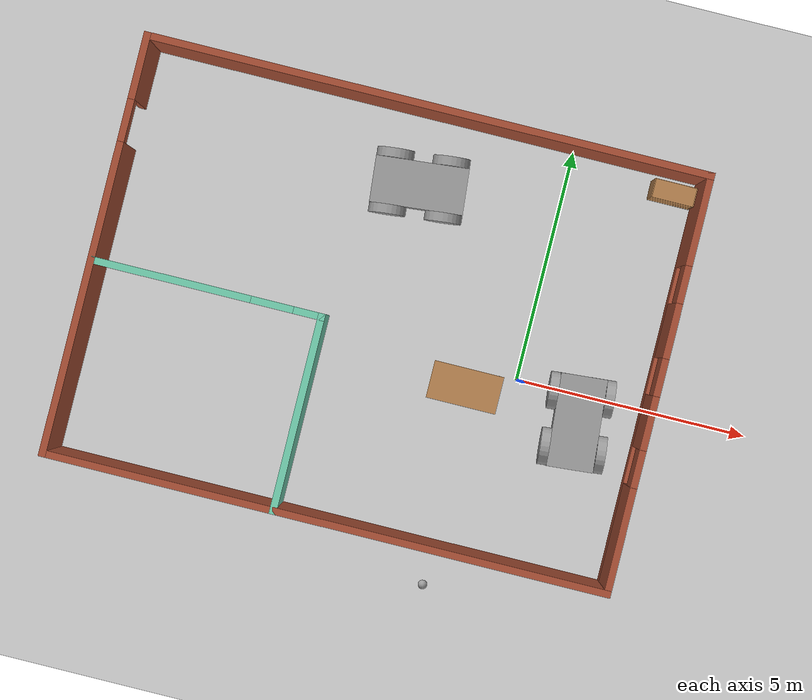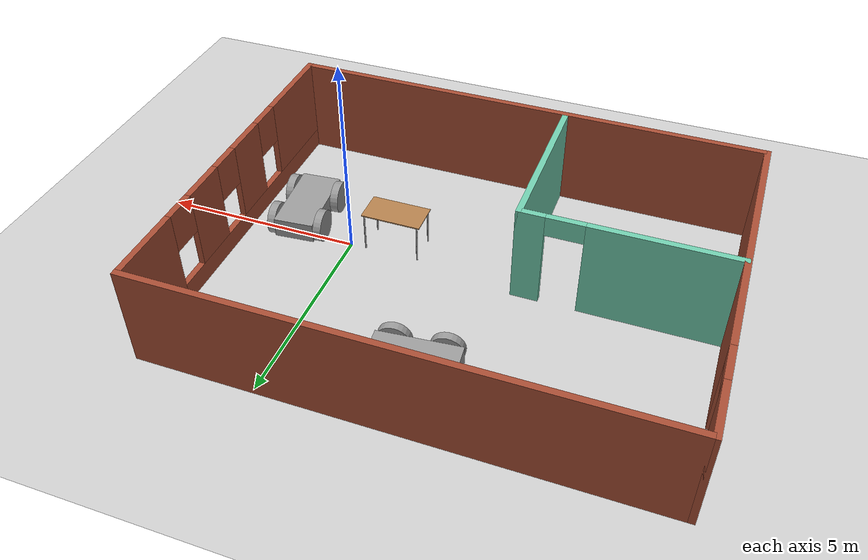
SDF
<sdf version="1.6">
 <world name="default">
  <plugin name="welcome" filename="libwelcome.so"/>
  <light name="sun" type="directional">
   <pose>0 0 10 0 -0 0</pose>
   <diffuse>0.8 0.8 0.8 1</diffuse>
   <specular>0.1 0.1 0.1 1</specular>
   <attenuation>
    <range>1000</range>
    <constant>0.9</constant>
    <linear>0.01</linear>
    <quadratic>0.001</quadratic>
   </attenuation>
   <direction>-0.5 0.5 -1</direction>
  </light>
  <model name="ground_plane">
   <static>1</static>
   <link name="link">
    <collision name="collision">
     <geometry><plane><normal>0 0 1</normal><size>100 100</size></plane></geometry>
     <surface><friction><ode><mu>100</mu><mu2>50</mu2></ode></friction></surface>
    </collision>
    <visual name="visual">
     <cast_shadows>0</cast_shadows>
     <geometry><plane><normal>0 0 1</normal><size>100 100</size></plane></geometry>
     <material>
      <script><uri>file://media/materials/scripts/gazebo.material</uri><name>Gazebo/Grey</name></script>
     </material>
    </visual>
   </link>
  </model>
  <gravity>0 0 -9.8</gravity>
  <magnetic_field>6e-06 2.3e-05 -4.2e-05</magnetic_field>
  <atmosphere type="adiabatic"/>
  <physics name="default_physics" default="0" type="ode">
   <max_step_size>0.001</max_step_size>
   <real_time_factor>1</real_time_factor>
   <real_time_update_rate>1000</real_time_update_rate>
  </physics>
  <scene><ambient>0.4 0.4 0.4 1</ambient><background>0.7 0.7 0.7 1</background><shadows>1</shadows></scene>
  <spherical_coordinates>
   <surface_model>EARTH_WGS84</surface_model>
   <latitude_deg>0</latitude_deg>
   <longitude_deg>0</longitude_deg>
   <elevation>0</elevation>
   <heading_deg>0</heading_deg>
  </spherical_coordinates>
  <model name="fourwalledbuilding">
   <pose>-3.19849 0.619298 0 0 -0 0</pose>
   <link name="Wall_10">
    <pose>-5.975 0.00084 0 0 -0 1.5708</pose>
    <visual name="Wall_10_Visual_0">
     <pose>-1.16203 0 1.25 0 -0 0</pose>
     <geometry><box><size>6.67594 0.15 2.5</size></box></geometry>
     <material>
      <script><uri>file://media/materials/scripts/gazebo.material</uri><name>Gazebo/Bricks</name></script>
      <ambient>0.921569 0.807843 0.615686 1</ambient>
     </material>
     <meta><layer>0</layer></meta>
    </visual>
    <collision name="Wall_10_Collision_0">
     <geometry><box><size>6.67594 0.15 2.5</size></box></geometry>
     <pose>-1.16203 0 1.25 0 -0 0</pose>
    </collision>
    <visual name="Wall_10_Visual_1">
     <pose>3.78797 0 1.25 0 -0 0</pose>
     <geometry><box><size>1.42406 0.15 2.5</size></box></geometry>
     <material>
      <script><uri>file://media/materials/scripts/gazebo.material</uri><name>Gazebo/Bricks</name></script>
      <ambient>0.921569 0.807843 0.615686 1</ambient>
     </material>
     <meta><layer>0</layer></meta>
    </visual>
    <collision name="Wall_10_Collision_1">
     <geometry><box><size>1.42406 0.15 2.5</size></box></geometry>
     <pose>3.78797 0 1.25 0 -0 0</pose>
    </collision>
    <visual name="Wall_10_Visual_2">
     <pose>2.62594 0 2.25 0 -0 0</pose>
     <geometry><box><size>0.9 0.15 0.5</size></box></geometry>
     <material>
      <script><uri>file://media/materials/scripts/gazebo.material</uri><name>Gazebo/Bricks</name></script>
      <ambient>0.921569 0.807843 0.615686 1</ambient>
     </material>
     <meta><layer>0</layer></meta>
    </visual>
    <collision name="Wall_10_Collision_2">
     <geometry><box><size>0.9 0.15 0.5</size></box></geometry>
     <pose>2.62594 0 2.25 0 -0 0</pose>
    </collision>
   </link>
   <link name="Wall_12">
    <pose>-3.51992 -0.32584 0 0 -0 0</pose>
    <visual name="Wall_12_Visual_0">
     <pose>-0.785586 0 1.25 0 -0 0</pose>
     <geometry><box><size>3.42883 0.15 2.5</size></box></geometry>
     <material>
      <script><uri>file://media/materials/scripts/gazebo.material</uri><name>Gazebo/Grey</name></script>
      <ambient>0.435294 0.796078 0.67451 1</ambient>
     </material>
     <meta><layer>0</layer></meta>
    </visual>
    <collision name="Wall_12_Collision_0">
     <geometry><box><size>3.42883 0.15 2.5</size></box></geometry>
     <pose>-0.785586 0 1.25 0 -0 0</pose>
    </collision>
    <visual name="Wall_12_Visual_1">
     <pose>2.16441 0 1.25 0 -0 0</pose>
     <geometry><box><size>0.671172 0.15 2.5</size></box></geometry>
     <material>
      <script><uri>file://media/materials/scripts/gazebo.material</uri><name>Gazebo/Grey</name></script>
      <ambient>0.435294 0.796078 0.67451 1</ambient>
     </material>
     <meta><layer>0</layer></meta>
    </visual>
    <collision name="Wall_12_Collision_1">
     <geometry><box><size>0.671172 0.15 2.5</size></box></geometry>
     <pose>2.16441 0 1.25 0 -0 0</pose>
    </collision>
    <visual name="Wall_12_Visual_2">
     <pose>1.37883 0 2.25 0 -0 0</pose>
     <geometry><box><size>0.9 0.15 0.5</size></box></geometry>
     <material>
      <script><uri>file://media/materials/scripts/gazebo.material</uri><name>Gazebo/Grey</name></script>
      <ambient>0.435294 0.796078 0.67451 1</ambient>
     </material>
     <meta><layer>0</layer></meta>
    </visual>
    <collision name="Wall_12_Collision_2">
     <geometry><box><size>0.9 0.15 0.5</size></box></geometry>
     <pose>1.37883 0 2.25 0 -0 0</pose>
    </collision>
   </link>
   <link name="Wall_13">
    <collision name="Wall_13_Collision">
     <geometry><box><size>4.25 0.15 2.5</size></box></geometry>
     <pose>0 0 1.25 0 -0 0</pose>
    </collision>
    <visual name="Wall_13_Visual">
     <pose>0 0 1.25 0 -0 0</pose>
     <geometry><box><size>4.25 0.15 2.5</size></box></geometry>
     <material>
      <script><uri>file://media/materials/scripts/gazebo.material</uri><name>Gazebo/Grey</name></script>
      <ambient>0.435294 0.796078 0.67451 1</ambient>
     </material>
     <meta><layer>0</layer></meta>
    </visual>
    <pose>-1.09492 -2.37584 0 0 0 -1.5708</pose>
   </link>
   <link name="Wall_6">
    <collision name="Wall_6_Collision">
     <geometry><box><size>12 0.15 2.5</size></box></geometry>
     <pose>0 0 1.25 0 -0 0</pose>
    </collision>
    <visual name="Wall_6_Visual">
     <pose>0 0 1.25 0 -0 0</pose>
     <geometry><box><size>12 0.15 2.5</size></box></geometry>
     <material>
      <script><uri>file://media/materials/scripts/gazebo.material</uri><name>Gazebo/Bricks</name></script>
      <ambient>0.921569 0.807843 0.615686 1</ambient>
     </material>
     <meta><layer>0</layer></meta>
    </visual>
    <pose>0.05 4.42584 0 0 -0 0</pose>
   </link>
   <link name="Wall_7">
    <pose>5.975 0.00084 0 0 0 -1.5708</pose>
    <visual name="Wall_7_Visual_0">
     <pose>-3.51027 0 1.25 0 -0 0</pose>
     <geometry><box><size>1.97946 0.15 2.5</size></box></geometry>
     <material>
      <script><uri>file://media/materials/scripts/gazebo.material</uri><name>Gazebo/Bricks</name></script>
      <ambient>0.921569 0.807843 0.615686 1</ambient>
     </material>
     <meta><layer>0</layer></meta>
    </visual>
    <collision name="Wall_7_Collision_0">
     <geometry><box><size>1.97946 0.15 2.5</size></box></geometry>
     <pose>-3.51027 0 1.25 0 -0 0</pose>
    </collision>
    <visual name="Wall_7_Visual_1">
     <pose>0.989731 0 0.25 0 -0 0</pose>
     <geometry><box><size>7.02054 0.15 0.5</size></box></geometry>
     <material>
      <script><uri>file://media/materials/scripts/gazebo.material</uri><name>Gazebo/Bricks</name></script>
      <ambient>0.921569 0.807843 0.615686 1</ambient>
     </material>
     <meta><layer>0</layer></meta>
    </visual>
    <collision name="Wall_7_Collision_1">
     <geometry><box><size>7.02054 0.15 0.5</size></box></geometry>
     <pose>0.989731 0 0.25 0 -0 0</pose>
    </collision>
    <visual name="Wall_7_Visual_2">
     <pose>-1.13633 0 1.5 0 -0 0</pose>
     <geometry><box><size>1.16841 0.15 2</size></box></geometry>
     <material>
      <script><uri>file://media/materials/scripts/gazebo.material</uri><name>Gazebo/Bricks</name></script>
      <ambient>0.921569 0.807843 0.615686 1</ambient>
     </material>
     <meta><layer>0</layer></meta>
    </visual>
    <collision name="Wall_7_Collision_2">
     <geometry><box><size>1.16841 0.15 2</size></box></geometry>
     <pose>-1.13633 0 1.5 0 -0 0</pose>
    </collision>
    <visual name="Wall_7_Visual_3">
     <pose>0.818784 0 1.5 0 -0 0</pose>
     <geometry><box><size>1.14182 0.15 2</size></box></geometry>
     <material>
      <script><uri>file://media/materials/scripts/gazebo.material</uri><name>Gazebo/Bricks</name></script>
      <ambient>0.921569 0.807843 0.615686 1</ambient>
     </material>
     <meta><layer>0</layer></meta>
    </visual>
    <collision name="Wall_7_Collision_3">
     <geometry><box><size>1.14182 0.15 2</size></box></geometry>
     <pose>0.818784 0 1.5 0 -0 0</pose>
    </collision>
    <visual name="Wall_7_Visual_4">
     <pose>3.34485 0 1.5 0 -0 0</pose>
     <geometry><box><size>2.31031 0.15 2</size></box></geometry>
     <material>
      <script><uri>file://media/materials/scripts/gazebo.material</uri><name>Gazebo/Bricks</name></script>
      <ambient>0.921569 0.807843 0.615686 1</ambient>
     </material>
     <meta><layer>0</layer></meta>
    </visual>
    <collision name="Wall_7_Collision_4">
     <geometry><box><size>2.31031 0.15 2</size></box></geometry>
     <pose>3.34485 0 1.5 0 -0 0</pose>
    </collision>
    <visual name="Wall_7_Visual_5">
     <pose>-2.12054 0 2 0 -0 0</pose>
     <geometry><box><size>0.8 0.15 1</size></box></geometry>
     <material>
      <script><uri>file://media/materials/scripts/gazebo.material</uri><name>Gazebo/Bricks</name></script>
      <ambient>0.921569 0.807843 0.615686 1</ambient>
     </material>
     <meta><layer>0</layer></meta>
    </visual>
    <collision name="Wall_7_Collision_5">
     <geometry><box><size>0.8 0.15 1</size></box></geometry>
     <pose>-2.12054 0 2 0 -0 0</pose>
    </collision>
    <visual name="Wall_7_Visual_6">
     <pose>-0.152123 0 2 0 -0 0</pose>
     <geometry><box><size>0.8 0.15 1</size></box></geometry>
     <material>
      <script><uri>file://media/materials/scripts/gazebo.material</uri><name>Gazebo/Bricks</name></script>
      <ambient>0.921569 0.807843 0.615686 1</ambient>
     </material>
     <meta><layer>0</layer></meta>
    </visual>
    <collision name="Wall_7_Collision_6">
     <geometry><box><size>0.8 0.15 1</size></box></geometry>
     <pose>-0.152123 0 2 0 -0 0</pose>
    </collision>
    <visual name="Wall_7_Visual_7">
     <pose>1.78969 0 2 0 -0 0</pose>
     <geometry><box><size>0.8 0.15 1</size></box></geometry>
     <material>
      <script><uri>file://media/materials/scripts/gazebo.material</uri><name>Gazebo/Bricks</name></script>
      <ambient>0.921569 0.807843 0.615686 1</ambient>
     </material>
     <meta><layer>0</layer></meta>
    </visual>
    <collision name="Wall_7_Collision_7">
     <geometry><box><size>0.8 0.15 1</size></box></geometry>
     <pose>1.78969 0 2 0 -0 0</pose>
    </collision>
   </link>
   <link name="Wall_8">
    <collision name="Wall_8_Collision">
     <geometry><box><size>12 0.15 2.5</size></box></geometry>
     <pose>0 0 1.25 0 -0 0</pose>
    </collision>
    <visual name="Wall_8_Visual">
     <pose>0 0 1.25 0 -0 0</pose>
     <geometry><box><size>12 0.15 2.5</size></box></geometry>
     <material>
      <script><uri>file://media/materials/scripts/gazebo.material</uri><name>Gazebo/Bricks</name></script>
      <ambient>0.921569 0.807843 0.615686 1</ambient>
     </material>
     <meta><layer>0</layer></meta>
    </visual>
    <pose>0.05 -4.42416 0 0 -0 3.14159</pose>
   </link>
   <static>1</static>
  </model>
  <model name="fourwheeled">
   <link name="chasis">
    <pose>-0.029032 1.14923 0.369998 0 -0 0</pose>
    <inertial>
     <mass>1</mass>
     <inertia>
      <ixx>0.166667</ixx>
      <ixy>0</ixy>
      <ixz>0</ixz>
      <iyy>0.166667</iyy>
      <iyz>0</iyz>
      <izz>0.166667</izz>
     </inertia>
    </inertial>
    <visual name="visual">
     <geometry><box><size>2 1 0.5</size></box></geometry>
     <material>
      <lighting>1</lighting>
      <script><uri>file://media/materials/scripts/gazebo.material</uri><name>Gazebo/Grey</name></script>
      <shader type="pixel"><normal_map>__default__</normal_map></shader>
      <ambient>0.3 0.3 0.3 1</ambient>
      <diffuse>0.7 0.7 0.7 1</diffuse>
      <specular>0.01 0.01 0.01 1</specular>
      <emissive>0 0 0 1</emissive>
     </material>
    </visual>
    <collision name="collision">
     <geometry><box><size>2 1 0.5</size></box></geometry>
     <surface>
      <friction>
       <ode><mu>1</mu><mu2>1</mu2><fdir1>0 0 0</fdir1><slip1>0</slip1><slip2>0</slip2></ode>
       <torsional>
        <coefficient>1</coefficient>
        <patch_radius>0</patch_radius>
        <surface_radius>0</surface_radius>
        <use_patch_radius>1</use_patch_radius>
        <ode><slip>0</slip></ode>
       </torsional>
      </friction>
      <bounce><restitution_coefficient>0</restitution_coefficient><threshold>1e+06</threshold></bounce>
      <contact>
       <collide_without_contact>0</collide_without_contact>
       <collide_without_contact_bitmask>1</collide_without_contact_bitmask>
       <collide_bitmask>1</collide_bitmask>
       <ode>
        <soft_cfm>0</soft_cfm>
        <soft_erp>0.2</soft_erp>
        <kp>1e+13</kp>
        <kd>1</kd>
        <max_vel>0.01</max_vel>
        <min_depth>0</min_depth>
       </ode>
       <bullet>
        <split_impulse>1</split_impulse>
        <split_impulse_penetration_threshold>-0.01</split_impulse_penetration_threshold>
        <soft_cfm>0</soft_cfm>
        <soft_erp>0.2</soft_erp>
        <kp>1e+13</kp>
        <kd>1</kd>
       </bullet>
      </contact>
     </surface>
    </collision>
   </link>
   <link name="leftbackwheel">
    <pose>0.570968 0.549188 0.369996 1.5707 -0 0</pose>
    <inertial>
     <mass>1</mass>
     <inertia><ixx>0.145833</ixx><ixy>0</ixy><ixz>0</ixz><iyy>0.145833</iyy><iyz>0</iyz><izz>0.125</izz></inertia>
    </inertial>
    <visual name="visual">
     <geometry><cylinder><radius>0.4</radius><length>0.2</length></cylinder></geometry>
     <material>
      <lighting>1</lighting>
      <script><uri>file://media/materials/scripts/gazebo.material</uri><name>Gazebo/Grey</name></script>
      <shader type="pixel"><normal_map>__default__</normal_map></shader>
      <ambient>0.3 0.3 0.3 1</ambient>
      <diffuse>0.7 0.7 0.7 1</diffuse>
      <specular>0.01 0.01 0.01 1</specular>
      <emissive>0 0 0 1</emissive>
     </material>
    </visual>
    <collision name="collision">
     <geometry><cylinder><radius>0.4</radius><length>0.2</length></cylinder></geometry>
     <surface>
      <friction>
       <ode><mu>1</mu><mu2>1</mu2><fdir1>0 0 0</fdir1><slip1>0</slip1><slip2>0</slip2></ode>
       <torsional>
        <coefficient>1</coefficient>
        <patch_radius>0</patch_radius>
        <surface_radius>0</surface_radius>
        <use_patch_radius>1</use_patch_radius>
        <ode><slip>0</slip></ode>
       </torsional>
      </friction>
      <bounce><restitution_coefficient>0</restitution_coefficient><threshold>1e+06</threshold></bounce>
      <contact>
       <collide_without_contact>0</collide_without_contact>
       <collide_without_contact_bitmask>1</collide_without_contact_bitmask>
       <collide_bitmask>1</collide_bitmask>
       <ode>
        <soft_cfm>0</soft_cfm>
        <soft_erp>0.2</soft_erp>
        <kp>1e+13</kp>
        <kd>1</kd>
        <max_vel>0.01</max_vel>
        <min_depth>0</min_depth>
       </ode>
       <bullet>
        <split_impulse>1</split_impulse>
        <split_impulse_penetration_threshold>-0.01</split_impulse_penetration_threshold>
        <soft_cfm>0</soft_cfm>
        <soft_erp>0.2</soft_erp>
        <kp>1e+13</kp>
        <kd>1</kd>
       </bullet>
      </contact>
     </surface>
    </collision>
   </link>
   <link name="rightfrontwheel">
    <pose>-0.629032 1.74919 0.369998 1.5707 -0 0</pose>
    <inertial>
     <mass>1</mass>
     <inertia><ixx>0.145833</ixx><ixy>0</ixy><ixz>0</ixz><iyy>0.145833</iyy><iyz>0</iyz><izz>0.125</izz></inertia>
    </inertial>
    <visual name="visual">
     <geometry><cylinder><radius>0.4</radius><length>0.2</length></cylinder></geometry>
     <material>
      <lighting>1</lighting>
      <script><uri>file://media/materials/scripts/gazebo.material</uri><name>Gazebo/Grey</name></script>
      <shader type="pixel"><normal_map>__default__</normal_map></shader>
      <ambient>0.3 0.3 0.3 1</ambient>
      <diffuse>0.7 0.7 0.7 1</diffuse>
      <specular>0.01 0.01 0.01 1</specular>
      <emissive>0 0 0 1</emissive>
     </material>
    </visual>
    <collision name="collision">
     <geometry><cylinder><radius>0.4</radius><length>0.2</length></cylinder></geometry>
     <surface>
      <friction>
       <ode><mu>1</mu><mu2>1</mu2><fdir1>0 0 0</fdir1><slip1>0</slip1><slip2>0</slip2></ode>
       <torsional>
        <coefficient>1</coefficient>
        <patch_radius>0</patch_radius>
        <surface_radius>0</surface_radius>
        <use_patch_radius>1</use_patch_radius>
        <ode><slip>0</slip></ode>
       </torsional>
      </friction>
      <bounce><restitution_coefficient>0</restitution_coefficient><threshold>1e+06</threshold></bounce>
      <contact>
       <collide_without_contact>0</collide_without_contact>
       <collide_without_contact_bitmask>1</collide_without_contact_bitmask>
       <collide_bitmask>1</collide_bitmask>
       <ode>
        <soft_cfm>0</soft_cfm>
        <soft_erp>0.2</soft_erp>
        <kp>1e+13</kp>
        <kd>1</kd>
        <max_vel>0.01</max_vel>
        <min_depth>0</min_depth>
       </ode>
       <bullet>
        <split_impulse>1</split_impulse>
        <split_impulse_penetration_threshold>-0.01</split_impulse_penetration_threshold>
        <soft_cfm>0</soft_cfm>
        <soft_erp>0.2</soft_erp>
        <kp>1e+13</kp>
        <kd>1</kd>
       </bullet>
      </contact>
     </surface>
    </collision>
   </link>
   <link name="leftfrontwheel">
    <pose>-0.629032 0.549188 0.369998 1.5707 -0 0</pose>
    <inertial>
     <mass>1</mass>
     <inertia><ixx>0.145833</ixx><ixy>0</ixy><ixz>0</ixz><iyy>0.145833</iyy><iyz>0</iyz><izz>0.125</izz></inertia>
    </inertial>
    <visual name="visual">
     <geometry><cylinder><radius>0.4</radius><length>0.2</length></cylinder></geometry>
     <material>
      <lighting>1</lighting>
      <script><uri>file://media/materials/scripts/gazebo.material</uri><name>Gazebo/Grey</name></script>
      <shader type="pixel"><normal_map>__default__</normal_map></shader>
      <ambient>0.3 0.3 0.3 1</ambient>
      <diffuse>0.7 0.7 0.7 1</diffuse>
      <specular>0.01 0.01 0.01 1</specular>
      <emissive>0 0 0 1</emissive>
     </material>
    </visual>
    <collision name="collision">
     <geometry><cylinder><radius>0.4</radius><length>0.2</length></cylinder></geometry>
     <surface>
      <friction>
       <ode><mu>1</mu><mu2>1</mu2><fdir1>0 0 0</fdir1><slip1>0</slip1><slip2>0</slip2></ode>
       <torsional>
        <coefficient>1</coefficient>
        <patch_radius>0</patch_radius>
        <surface_radius>0</surface_radius>
        <use_patch_radius>1</use_patch_radius>
        <ode><slip>0</slip></ode>
       </torsional>
      </friction>
      <bounce><restitution_coefficient>0</restitution_coefficient><threshold>1e+06</threshold></bounce>
      <contact>
       <collide_without_contact>0</collide_without_contact>
       <collide_without_contact_bitmask>1</collide_without_contact_bitmask>
       <collide_bitmask>1</collide_bitmask>
       <ode>
        <soft_cfm>0</soft_cfm>
        <soft_erp>0.2</soft_erp>
        <kp>1e+13</kp>
        <kd>1</kd>
        <max_vel>0.01</max_vel>
        <min_depth>0</min_depth>
       </ode>
       <bullet>
        <split_impulse>1</split_impulse>
        <split_impulse_penetration_threshold>-0.01</split_impulse_penetration_threshold>
        <soft_cfm>0</soft_cfm>
        <soft_erp>0.2</soft_erp>
        <kp>1e+13</kp>
        <kd>1</kd>
       </bullet>
      </contact>
     </surface>
    </collision>
   </link>
   <link name="rigthbackwheel">
    <pose>0.570968 1.74919 0.369998 1.5707 -0 0</pose>
    <inertial>
     <mass>1</mass>
     <inertia><ixx>0.145833</ixx><ixy>0</ixy><ixz>0</ixz><iyy>0.145833</iyy><iyz>0</iyz><izz>0.125</izz></inertia>
    </inertial>
    <visual name="visual">
     <geometry><cylinder><radius>0.4</radius><length>0.2</length></cylinder></geometry>
     <material>
      <lighting>1</lighting>
      <script><uri>file://media/materials/scripts/gazebo.material</uri><name>Gazebo/Grey</name></script>
      <shader type="pixel"><normal_map>__default__</normal_map></shader>
      <ambient>0.3 0.3 0.3 1</ambient>
      <diffuse>0.7 0.7 0.7 1</diffuse>
      <specular>0.01 0.01 0.01 1</specular>
      <emissive>0 0 0 1</emissive>
     </material>
    </visual>
    <collision name="collision">
     <geometry><cylinder><radius>0.4</radius><length>0.2</length></cylinder></geometry>
     <surface>
      <friction>
       <ode><mu>1</mu><mu2>1</mu2><fdir1>0 0 0</fdir1><slip1>0</slip1><slip2>0</slip2></ode>
       <torsional>
        <coefficient>1</coefficient>
        <patch_radius>0</patch_radius>
        <surface_radius>0</surface_radius>
        <use_patch_radius>1</use_patch_radius>
        <ode><slip>0</slip></ode>
       </torsional>
      </friction>
      <bounce><restitution_coefficient>0</restitution_coefficient><threshold>1e+06</threshold></bounce>
      <contact>
       <collide_without_contact>0</collide_without_contact>
       <collide_without_contact_bitmask>1</collide_without_contact_bitmask>
       <collide_bitmask>1</collide_bitmask>
       <ode>
        <soft_cfm>0</soft_cfm>
        <soft_erp>0.2</soft_erp>
        <kp>1e+13</kp>
        <kd>1</kd>
        <max_vel>0.01</max_vel>
        <min_depth>0</min_depth>
       </ode>
       <bullet>
        <split_impulse>1</split_impulse>
        <split_impulse_penetration_threshold>-0.01</split_impulse_penetration_threshold>
        <soft_cfm>0</soft_cfm>
        <soft_erp>0.2</soft_erp>
        <kp>1e+13</kp>
        <kd>1</kd>
       </bullet>
      </contact>
     </surface>
    </collision>
   </link>
   <joint name="chasis_JOINT_0" type="revolute">
    <parent>chasis</parent>
    <child>leftfrontwheel</child>
    <axis>
     <xyz>0 0 1</xyz>
     <use_parent_model_frame>0</use_parent_model_frame>
     <limit>
      <lower>-1.79769e+308</lower>
      <upper>1.79769e+308</upper>
      <effort>-1</effort>
      <velocity>-1</velocity>
     </limit>
     <dynamics>
      <spring_reference>0</spring_reference>
      <spring_stiffness>0</spring_stiffness>
      <damping>0</damping>
     </dynamics>
    </axis>
    <physics>
     <ode><limit><cfm>0</cfm><erp>0.2</erp></limit><suspension><cfm>0</cfm><erp>0.2</erp></suspension></ode>
    </physics>
   </joint>
   <joint name="chasis_JOINT_1" type="revolute">
    <parent>chasis</parent>
    <child>leftbackwheel</child>
    <axis>
     <xyz>0 0 1</xyz>
     <use_parent_model_frame>0</use_parent_model_frame>
     <limit>
      <lower>-1.79769e+308</lower>
      <upper>1.79769e+308</upper>
      <effort>-1</effort>
      <velocity>-1</velocity>
     </limit>
     <dynamics>
      <spring_reference>0</spring_reference>
      <spring_stiffness>0</spring_stiffness>
      <damping>0</damping>
     </dynamics>
    </axis>
    <physics>
     <ode><limit><cfm>0</cfm><erp>0.2</erp></limit><suspension><cfm>0</cfm><erp>0.2</erp></suspension></ode>
    </physics>
   </joint>
   <joint name="chasis_JOINT_2" type="revolute">
    <parent>chasis</parent>
    <child>rightfrontwheel</child>
    <axis>
     <xyz>0 0 1</xyz>
     <use_parent_model_frame>0</use_parent_model_frame>
     <limit>
      <lower>-1.79769e+308</lower>
      <upper>1.79769e+308</upper>
      <effort>-1</effort>
      <velocity>-1</velocity>
     </limit>
     <dynamics>
      <spring_reference>0</spring_reference>
      <spring_stiffness>0</spring_stiffness>
      <damping>0</damping>
     </dynamics>
    </axis>
    <physics>
     <ode><limit><cfm>0</cfm><erp>0.2</erp></limit><suspension><cfm>0</cfm><erp>0.2</erp></suspension></ode>
    </physics>
   </joint>
   <joint name="chasis_JOINT_3" type="revolute">
    <parent>chasis</parent>
    <child>rigthbackwheel</child>
    <axis>
     <xyz>0 0 1</xyz>
     <use_parent_model_frame>0</use_parent_model_frame>
     <limit>
      <lower>-1.79769e+308</lower>
      <upper>1.79769e+308</upper>
      <effort>-1</effort>
      <velocity>-1</velocity>
     </limit>
     <dynamics>
      <spring_reference>0</spring_reference>
      <spring_stiffness>0</spring_stiffness>
      <damping>0</damping>
     </dynamics>
    </axis>
    <physics>
     <ode><limit><cfm>0</cfm><erp>0.2</erp></limit><suspension><cfm>0</cfm><erp>0.2</erp></suspension></ode>
    </physics>
   </joint>
   <static>0</static>
   <pose>-2.88803 2.36732 0.030016 -3e-06 -4e-06 0.092601</pose>
  </model>
  <model name="table">
   <static>1</static>
   <link name="link">
    <collision name="surface">
     <pose>0 0 1 0 -0 0</pose>
     <geometry><box><size>1.5 0.8 0.03</size></box></geometry>
     <surface><friction><ode><mu>0.6</mu><mu2>0.6</mu2></ode></friction></surface>
    </collision>
    <visual name="visual1">
     <pose>0 0 1 0 -0 0</pose>
     <geometry><box><size>1.5 0.8 0.03</size></box></geometry>
     <material>
      <script><uri>file://media/materials/scripts/gazebo.material</uri><name>Gazebo/Wood</name></script>
     </material>
    </visual>
    <collision name="front_left_leg">
     <pose>0.68 0.38 0.5 0 -0 0</pose>
     <geometry><cylinder><radius>0.02</radius><length>1</length></cylinder></geometry>
    </collision>
    <visual name="front_left_leg">
     <pose>0.68 0.38 0.5 0 -0 0</pose>
     <geometry><cylinder><radius>0.02</radius><length>1</length></cylinder></geometry>
     <material>
      <script><uri>file://media/materials/scripts/gazebo.material</uri><name>Gazebo/Grey</name></script>
     </material>
    </visual>
    <collision name="front_right_leg">
     <pose>0.68 -0.38 0.5 0 -0 0</pose>
     <geometry><cylinder><radius>0.02</radius><length>1</length></cylinder></geometry>
    </collision>
    <visual name="front_right_leg">
     <pose>0.68 -0.38 0.5 0 -0 0</pose>
     <geometry><cylinder><radius>0.02</radius><length>1</length></cylinder></geometry>
     <material>
      <script><uri>file://media/materials/scripts/gazebo.material</uri><name>Gazebo/Grey</name></script>
     </material>
    </visual>
    <collision name="back_right_leg">
     <pose>-0.68 -0.38 0.5 0 -0 0</pose>
     <geometry><cylinder><radius>0.02</radius><length>1</length></cylinder></geometry>
    </collision>
    <visual name="back_right_leg">
     <pose>-0.68 -0.38 0.5 0 -0 0</pose>
     <geometry><cylinder><radius>0.02</radius><length>1</length></cylinder></geometry>
     <material>
      <script><uri>file://media/materials/scripts/gazebo.material</uri><name>Gazebo/Grey</name></script>
     </material>
    </visual>
    <collision name="back_left_leg">
     <pose>-0.68 0.38 0.5 0 -0 0</pose>
     <geometry><cylinder><radius>0.02</radius><length>1</length></cylinder></geometry>
    </collision>
    <visual name="back_left_leg">
     <pose>-0.68 0.38 0.5 0 -0 0</pose>
     <geometry><cylinder><radius>0.02</radius><length>1</length></cylinder></geometry>
     <material>
      <script><uri>file://media/materials/scripts/gazebo.material</uri><name>Gazebo/Grey</name></script>
     </material>
    </visual>
   </link>
   <pose>-1.05306 -0.410816 0 0 -0 0</pose>
  </model>
  <model name="bookshelf">
   <static>1</static>
   <link name="link">
    <inertial><mass>1</mass></inertial>
    <collision name="back">
     <pose>0 0.005 0.6 0 -0 0</pose>
     <geometry><box><size>0.9 0.01 1.2</size></box></geometry>
    </collision>
    <visual name="visual1">
     <pose>0 0.005 0.6 0 -0 0</pose>
     <geometry><box><size>0.9 0.01 1.2</size></box></geometry>
     <material>
      <script><uri>file://media/materials/scripts/gazebo.material</uri><name>Gazebo/Wood</name></script>
     </material>
    </visual>
    <collision name="left_side">
     <pose>0.45 -0.195 0.6 0 -0 0</pose>
     <geometry><box><size>0.02 0.4 1.2</size></box></geometry>
    </collision>
    <visual name="visual2">
     <pose>0.45 -0.195 0.6 0 -0 0</pose>
     <geometry><box><size>0.02 0.4 1.2</size></box></geometry>
     <material>
      <script><uri>file://media/materials/scripts/gazebo.material</uri><name>Gazebo/Wood</name></script>
     </material>
    </visual>
    <collision name="right_side">
     <pose>-0.45 -0.195 0.6 0 -0 0</pose>
     <geometry><box><size>0.02 0.4 1.2</size></box></geometry>
    </collision>
    <visual name="visual3">
     <pose>-0.45 -0.195 0.6 0 -0 0</pose>
     <geometry><box><size>0.02 0.4 1.2</size></box></geometry>
     <material>
      <script><uri>file://media/materials/scripts/gazebo.material</uri><name>Gazebo/Wood</name></script>
     </material>
    </visual>
    <collision name="bottom">
     <pose>0 -0.195 0.03 0 -0 0</pose>
     <geometry><box><size>0.88 0.4 0.06</size></box></geometry>
    </collision>
    <visual name="visual4">
     <pose>0 -0.195 0.03 0 -0 0</pose>
     <geometry><box><size>0.88 0.4 0.06</size></box></geometry>
     <material>
      <script><uri>file://media/materials/scripts/gazebo.material</uri><name>Gazebo/Wood</name></script>
     </material>
    </visual>
    <collision name="top">
     <pose>0 -0.195 1.19 0 -0 0</pose>
     <geometry><box><size>0.88 0.4 0.02</size></box></geometry>
    </collision>
    <visual name="visual5">
     <pose>0 -0.195 1.19 0 -0 0</pose>
     <geometry><box><size>0.88 0.4 0.02</size></box></geometry>
     <material>
      <script><uri>file://media/materials/scripts/gazebo.material</uri><name>Gazebo/Wood</name></script>
     </material>
    </visual>
    <collision name="low_shelf">
     <pose>0 -0.195 0.43 0 -0 0</pose>
     <geometry><box><size>0.88 0.4 0.02</size></box></geometry>
    </collision>
    <visual name="visual6">
     <pose>0 -0.195 0.43 0 -0 0</pose>
     <geometry><box><size>0.88 0.4 0.02</size></box></geometry>
     <material>
      <script><uri>file://media/materials/scripts/gazebo.material</uri><name>Gazebo/Wood</name></script>
     </material>
    </visual>
    <collision name="high_shelf">
     <pose>0 -0.195 0.8 0 -0 0</pose>
     <geometry><box><size>0.88 0.4 0.02</size></box></geometry>
    </collision>
    <visual name="visual7">
     <pose>0 -0.195 0.8 0 -0 0</pose>
     <geometry><box><size>0.88 0.4 0.02</size></box></geometry>
     <material>
      <script><uri>file://media/materials/scripts/gazebo.material</uri><name>Gazebo/Wood</name></script>
     </material>
    </visual>
   </link>
   <pose>2.22143 4.81519 0 0 -0 0</pose>
  </model>
  <model name="fourwheeled_0">
   <link name="chasis">
    <pose>-0.029032 1.14923 0.369998 0 -0 0</pose>
    <inertial>
     <mass>1</mass>
     <inertia>
      <ixx>0.166667</ixx>
      <ixy>0</ixy>
      <ixz>0</ixz>
      <iyy>0.166667</iyy>
      <iyz>0</iyz>
      <izz>0.166667</izz>
     </inertia>
    </inertial>
    <visual name="visual">
     <geometry><box><size>2 1 0.5</size></box></geometry>
     <material>
      <lighting>1</lighting>
      <script><uri>file://media/materials/scripts/gazebo.material</uri><name>Gazebo/Grey</name></script>
      <shader type="pixel"><normal_map>__default__</normal_map></shader>
      <ambient>0.3 0.3 0.3 1</ambient>
      <diffuse>0.7 0.7 0.7 1</diffuse>
      <specular>0.01 0.01 0.01 1</specular>
      <emissive>0 0 0 1</emissive>
     </material>
    </visual>
    <collision name="collision">
     <geometry><box><size>2 1 0.5</size></box></geometry>
     <surface>
      <friction>
       <ode><mu>1</mu><mu2>1</mu2><fdir1>0 0 0</fdir1><slip1>0</slip1><slip2>0</slip2></ode>
       <torsional>
        <coefficient>1</coefficient>
        <patch_radius>0</patch_radius>
        <surface_radius>0</surface_radius>
        <use_patch_radius>1</use_patch_radius>
        <ode><slip>0</slip></ode>
       </torsional>
      </friction>
      <bounce><restitution_coefficient>0</restitution_coefficient><threshold>1e+06</threshold></bounce>
      <contact>
       <collide_without_contact>0</collide_without_contact>
       <collide_without_contact_bitmask>1</collide_without_contact_bitmask>
       <collide_bitmask>1</collide_bitmask>
       <ode>
        <soft_cfm>0</soft_cfm>
        <soft_erp>0.2</soft_erp>
        <kp>1e+13</kp>
        <kd>1</kd>
        <max_vel>0.01</max_vel>
        <min_depth>0</min_depth>
       </ode>
       <bullet>
        <split_impulse>1</split_impulse>
        <split_impulse_penetration_threshold>-0.01</split_impulse_penetration_threshold>
        <soft_cfm>0</soft_cfm>
        <soft_erp>0.2</soft_erp>
        <kp>1e+13</kp>
        <kd>1</kd>
       </bullet>
      </contact>
     </surface>
    </collision>
   </link>
   <link name="leftbackwheel">
    <pose>0.570968 0.549188 0.369996 1.5707 -0 0</pose>
    <inertial>
     <mass>1</mass>
     <inertia><ixx>0.145833</ixx><ixy>0</ixy><ixz>0</ixz><iyy>0.145833</iyy><iyz>0</iyz><izz>0.125</izz></inertia>
    </inertial>
    <visual name="visual">
     <geometry><cylinder><radius>0.4</radius><length>0.2</length></cylinder></geometry>
     <material>
      <lighting>1</lighting>
      <script><uri>file://media/materials/scripts/gazebo.material</uri><name>Gazebo/Grey</name></script>
      <shader type="pixel"><normal_map>__default__</normal_map></shader>
      <ambient>0.3 0.3 0.3 1</ambient>
      <diffuse>0.7 0.7 0.7 1</diffuse>
      <specular>0.01 0.01 0.01 1</specular>
      <emissive>0 0 0 1</emissive>
     </material>
    </visual>
    <collision name="collision">
     <geometry><cylinder><radius>0.4</radius><length>0.2</length></cylinder></geometry>
     <surface>
      <friction>
       <ode><mu>1</mu><mu2>1</mu2><fdir1>0 0 0</fdir1><slip1>0</slip1><slip2>0</slip2></ode>
       <torsional>
        <coefficient>1</coefficient>
        <patch_radius>0</patch_radius>
        <surface_radius>0</surface_radius>
        <use_patch_radius>1</use_patch_radius>
        <ode><slip>0</slip></ode>
       </torsional>
      </friction>
      <bounce><restitution_coefficient>0</restitution_coefficient><threshold>1e+06</threshold></bounce>
      <contact>
       <collide_without_contact>0</collide_without_contact>
       <collide_without_contact_bitmask>1</collide_without_contact_bitmask>
       <collide_bitmask>1</collide_bitmask>
       <ode>
        <soft_cfm>0</soft_cfm>
        <soft_erp>0.2</soft_erp>
        <kp>1e+13</kp>
        <kd>1</kd>
        <max_vel>0.01</max_vel>
        <min_depth>0</min_depth>
       </ode>
       <bullet>
        <split_impulse>1</split_impulse>
        <split_impulse_penetration_threshold>-0.01</split_impulse_penetration_threshold>
        <soft_cfm>0</soft_cfm>
        <soft_erp>0.2</soft_erp>
        <kp>1e+13</kp>
        <kd>1</kd>
       </bullet>
      </contact>
     </surface>
    </collision>
   </link>
   <link name="rightfrontwheel">
    <pose>-0.629032 1.74919 0.369998 1.5707 -0 0</pose>
    <inertial>
     <mass>1</mass>
     <inertia><ixx>0.145833</ixx><ixy>0</ixy><ixz>0</ixz><iyy>0.145833</iyy><iyz>0</iyz><izz>0.125</izz></inertia>
    </inertial>
    <visual name="visual">
     <geometry><cylinder><radius>0.4</radius><length>0.2</length></cylinder></geometry>
     <material>
      <lighting>1</lighting>
      <script><uri>file://media/materials/scripts/gazebo.material</uri><name>Gazebo/Grey</name></script>
      <shader type="pixel"><normal_map>__default__</normal_map></shader>
      <ambient>0.3 0.3 0.3 1</ambient>
      <diffuse>0.7 0.7 0.7 1</diffuse>
      <specular>0.01 0.01 0.01 1</specular>
      <emissive>0 0 0 1</emissive>
     </material>
    </visual>
    <collision name="collision">
     <geometry><cylinder><radius>0.4</radius><length>0.2</length></cylinder></geometry>
     <surface>
      <friction>
       <ode><mu>1</mu><mu2>1</mu2><fdir1>0 0 0</fdir1><slip1>0</slip1><slip2>0</slip2></ode>
       <torsional>
        <coefficient>1</coefficient>
        <patch_radius>0</patch_radius>
        <surface_radius>0</surface_radius>
        <use_patch_radius>1</use_patch_radius>
        <ode><slip>0</slip></ode>
       </torsional>
      </friction>
      <bounce><restitution_coefficient>0</restitution_coefficient><threshold>1e+06</threshold></bounce>
      <contact>
       <collide_without_contact>0</collide_without_contact>
       <collide_without_contact_bitmask>1</collide_without_contact_bitmask>
       <collide_bitmask>1</collide_bitmask>
       <ode>
        <soft_cfm>0</soft_cfm>
        <soft_erp>0.2</soft_erp>
        <kp>1e+13</kp>
        <kd>1</kd>
        <max_vel>0.01</max_vel>
        <min_depth>0</min_depth>
       </ode>
       <bullet>
        <split_impulse>1</split_impulse>
        <split_impulse_penetration_threshold>-0.01</split_impulse_penetration_threshold>
        <soft_cfm>0</soft_cfm>
        <soft_erp>0.2</soft_erp>
        <kp>1e+13</kp>
        <kd>1</kd>
       </bullet>
      </contact>
     </surface>
    </collision>
   </link>
   <link name="leftfrontwheel">
    <pose>-0.629032 0.549188 0.369998 1.5707 -0 0</pose>
    <inertial>
     <mass>1</mass>
     <inertia><ixx>0.145833</ixx><ixy>0</ixy><ixz>0</ixz><iyy>0.145833</iyy><iyz>0</iyz><izz>0.125</izz></inertia>
    </inertial>
    <visual name="visual">
     <geometry><cylinder><radius>0.4</radius><length>0.2</length></cylinder></geometry>
     <material>
      <lighting>1</lighting>
      <script><uri>file://media/materials/scripts/gazebo.material</uri><name>Gazebo/Grey</name></script>
      <shader type="pixel"><normal_map>__default__</normal_map></shader>
      <ambient>0.3 0.3 0.3 1</ambient>
      <diffuse>0.7 0.7 0.7 1</diffuse>
      <specular>0.01 0.01 0.01 1</specular>
      <emissive>0 0 0 1</emissive>
     </material>
    </visual>
    <collision name="collision">
     <geometry><cylinder><radius>0.4</radius><length>0.2</length></cylinder></geometry>
     <surface>
      <friction>
       <ode><mu>1</mu><mu2>1</mu2><fdir1>0 0 0</fdir1><slip1>0</slip1><slip2>0</slip2></ode>
       <torsional>
        <coefficient>1</coefficient>
        <patch_radius>0</patch_radius>
        <surface_radius>0</surface_radius>
        <use_patch_radius>1</use_patch_radius>
        <ode><slip>0</slip></ode>
       </torsional>
      </friction>
      <bounce><restitution_coefficient>0</restitution_coefficient><threshold>1e+06</threshold></bounce>
      <contact>
       <collide_without_contact>0</collide_without_contact>
       <collide_without_contact_bitmask>1</collide_without_contact_bitmask>
       <collide_bitmask>1</collide_bitmask>
       <ode>
        <soft_cfm>0</soft_cfm>
        <soft_erp>0.2</soft_erp>
        <kp>1e+13</kp>
        <kd>1</kd>
        <max_vel>0.01</max_vel>
        <min_depth>0</min_depth>
       </ode>
       <bullet>
        <split_impulse>1</split_impulse>
        <split_impulse_penetration_threshold>-0.01</split_impulse_penetration_threshold>
        <soft_cfm>0</soft_cfm>
        <soft_erp>0.2</soft_erp>
        <kp>1e+13</kp>
        <kd>1</kd>
       </bullet>
      </contact>
     </surface>
    </collision>
   </link>
   <link name="rigthbackwheel">
    <pose>0.570968 1.74919 0.369998 1.5707 -0 0</pose>
    <inertial>
     <mass>1</mass>
     <inertia><ixx>0.145833</ixx><ixy>0</ixy><ixz>0</ixz><iyy>0.145833</iyy><iyz>0</iyz><izz>0.125</izz></inertia>
    </inertial>
    <visual name="visual">
     <geometry><cylinder><radius>0.4</radius><length>0.2</length></cylinder></geometry>
     <material>
      <lighting>1</lighting>
      <script><uri>file://media/materials/scripts/gazebo.material</uri><name>Gazebo/Grey</name></script>
      <shader type="pixel"><normal_map>__default__</normal_map></shader>
      <ambient>0.3 0.3 0.3 1</ambient>
      <diffuse>0.7 0.7 0.7 1</diffuse>
      <specular>0.01 0.01 0.01 1</specular>
      <emissive>0 0 0 1</emissive>
     </material>
    </visual>
    <collision name="collision">
     <geometry><cylinder><radius>0.4</radius><length>0.2</length></cylinder></geometry>
     <surface>
      <friction>
       <ode><mu>1</mu><mu2>1</mu2><fdir1>0 0 0</fdir1><slip1>0</slip1><slip2>0</slip2></ode>
       <torsional>
        <coefficient>1</coefficient>
        <patch_radius>0</patch_radius>
        <surface_radius>0</surface_radius>
        <use_patch_radius>1</use_patch_radius>
        <ode><slip>0</slip></ode>
       </torsional>
      </friction>
      <bounce><restitution_coefficient>0</restitution_coefficient><threshold>1e+06</threshold></bounce>
      <contact>
       <collide_without_contact>0</collide_without_contact>
       <collide_without_contact_bitmask>1</collide_without_contact_bitmask>
       <collide_bitmask>1</collide_bitmask>
       <ode>
        <soft_cfm>0</soft_cfm>
        <soft_erp>0.2</soft_erp>
        <kp>1e+13</kp>
        <kd>1</kd>
        <max_vel>0.01</max_vel>
        <min_depth>0</min_depth>
       </ode>
       <bullet>
        <split_impulse>1</split_impulse>
        <split_impulse_penetration_threshold>-0.01</split_impulse_penetration_threshold>
        <soft_cfm>0</soft_cfm>
        <soft_erp>0.2</soft_erp>
        <kp>1e+13</kp>
        <kd>1</kd>
       </bullet>
      </contact>
     </surface>
    </collision>
   </link>
   <joint name="chasis_JOINT_0" type="revolute">
    <parent>chasis</parent>
    <child>leftfrontwheel</child>
    <axis>
     <xyz>0 0 1</xyz>
     <use_parent_model_frame>0</use_parent_model_frame>
     <limit>
      <lower>-1.79769e+308</lower>
      <upper>1.79769e+308</upper>
      <effort>-1</effort>
      <velocity>-1</velocity>
     </limit>
     <dynamics>
      <spring_reference>0</spring_reference>
      <spring_stiffness>0</spring_stiffness>
      <damping>0</damping>
     </dynamics>
    </axis>
    <physics>
     <ode><limit><cfm>0</cfm><erp>0.2</erp></limit><suspension><cfm>0</cfm><erp>0.2</erp></suspension></ode>
    </physics>
   </joint>
   <joint name="chasis_JOINT_1" type="revolute">
    <parent>chasis</parent>
    <child>leftbackwheel</child>
    <axis>
     <xyz>0 0 1</xyz>
     <use_parent_model_frame>0</use_parent_model_frame>
     <limit>
      <lower>-1.79769e+308</lower>
      <upper>1.79769e+308</upper>
      <effort>-1</effort>
      <velocity>-1</velocity>
     </limit>
     <dynamics>
      <spring_reference>0</spring_reference>
      <spring_stiffness>0</spring_stiffness>
      <damping>0</damping>
     </dynamics>
    </axis>
    <physics>
     <ode><limit><cfm>0</cfm><erp>0.2</erp></limit><suspension><cfm>0</cfm><erp>0.2</erp></suspension></ode>
    </physics>
   </joint>
   <joint name="chasis_JOINT_2" type="revolute">
    <parent>chasis</parent>
    <child>rightfrontwheel</child>
    <axis>
     <xyz>0 0 1</xyz>
     <use_parent_model_frame>0</use_parent_model_frame>
     <limit>
      <lower>-1.79769e+308</lower>
      <upper>1.79769e+308</upper>
      <effort>-1</effort>
      <velocity>-1</velocity>
     </limit>
     <dynamics>
      <spring_reference>0</spring_reference>
      <spring_stiffness>0</spring_stiffness>
      <damping>0</damping>
     </dynamics>
    </axis>
    <physics>
     <ode><limit><cfm>0</cfm><erp>0.2</erp></limit><suspension><cfm>0</cfm><erp>0.2</erp></suspension></ode>
    </physics>
   </joint>
   <joint name="chasis_JOINT_3" type="revolute">
    <parent>chasis</parent>
    <child>rigthbackwheel</child>
    <axis>
     <xyz>0 0 1</xyz>
     <use_parent_model_frame>0</use_parent_model_frame>
     <limit>
      <lower>-1.79769e+308</lower>
      <upper>1.79769e+308</upper>
      <effort>-1</effort>
      <velocity>-1</velocity>
     </limit>
     <dynamics>
      <spring_reference>0</spring_reference>
      <spring_stiffness>0</spring_stiffness>
      <damping>0</damping>
     </dynamics>
    </axis>
    <physics>
     <ode><limit><cfm>0</cfm><erp>0.2</erp></limit><suspension><cfm>0</cfm><erp>0.2</erp></suspension></ode>
    </physics>
   </joint>
   <static>0</static>
   <pose>0.293744 -0.692957 0.030013 -1e-06 -2e-06 -1.48944</pose>
  </model>
  <model name="mywhiteball">
   <link name="link_0">
    <inertial>
     <mass>1</mass>
     <inertia><ixx>0.1</ixx><ixy>0</ixy><ixz>0</ixz><iyy>0.1</iyy><iyz>0</iyz><izz>0.1</izz></inertia>
    </inertial>
    <visual name="visual">
     <geometry><sphere><radius>0.1</radius></sphere></geometry>
     <material>
      <lighting>1</lighting>
      <script><uri>file://media/materials/scripts/gazebo.material</uri><name>Gazebo/Grey</name></script>
      <shader type="pixel"><normal_map>__default__</normal_map></shader>
      <ambient>1 1 1 1</ambient>
      <diffuse>1 1 1 1</diffuse>
      <specular>1 1 1 1</specular>
      <emissive>1 1 1 1</emissive>
     </material>
    </visual>
    <collision name="collision">
     <geometry><sphere><radius>0.1</radius></sphere></geometry>
     <surface>
      <friction>
       <ode><mu>1</mu><mu2>1</mu2><fdir1>0 0 0</fdir1><slip1>0</slip1><slip2>0</slip2></ode>
       <torsional>
        <coefficient>1</coefficient>
        <patch_radius>0</patch_radius>
        <surface_radius>0</surface_radius>
        <use_patch_radius>1</use_patch_radius>
        <ode><slip>0</slip></ode>
       </torsional>
      </friction>
      <bounce><restitution_coefficient>0</restitution_coefficient><threshold>1e+06</threshold></bounce>
      <contact>
       <collide_without_contact>0</collide_without_contact>
       <collide_without_contact_bitmask>1</collide_without_contact_bitmask>
       <collide_bitmask>1</collide_bitmask>
       <ode>
        <soft_cfm>0</soft_cfm>
        <soft_erp>0.2</soft_erp>
        <kp>1e+13</kp>
        <kd>1</kd>
        <max_vel>0.01</max_vel>
        <min_depth>0</min_depth>
       </ode>
       <bullet>
        <split_impulse>1</split_impulse>
        <split_impulse_penetration_threshold>-0.01</split_impulse_penetration_threshold>
        <soft_cfm>0</soft_cfm>
        <soft_erp>0.2</soft_erp>
        <kp>1e+13</kp>
        <kd>1</kd>
       </bullet>
      </contact>
     </surface>
    </collision>
   </link>
   <static>0</static>
   <pose>-0.900405 -4.72502 0.1 0 -0 0</pose>
  </model>
 </world>
</sdf>
